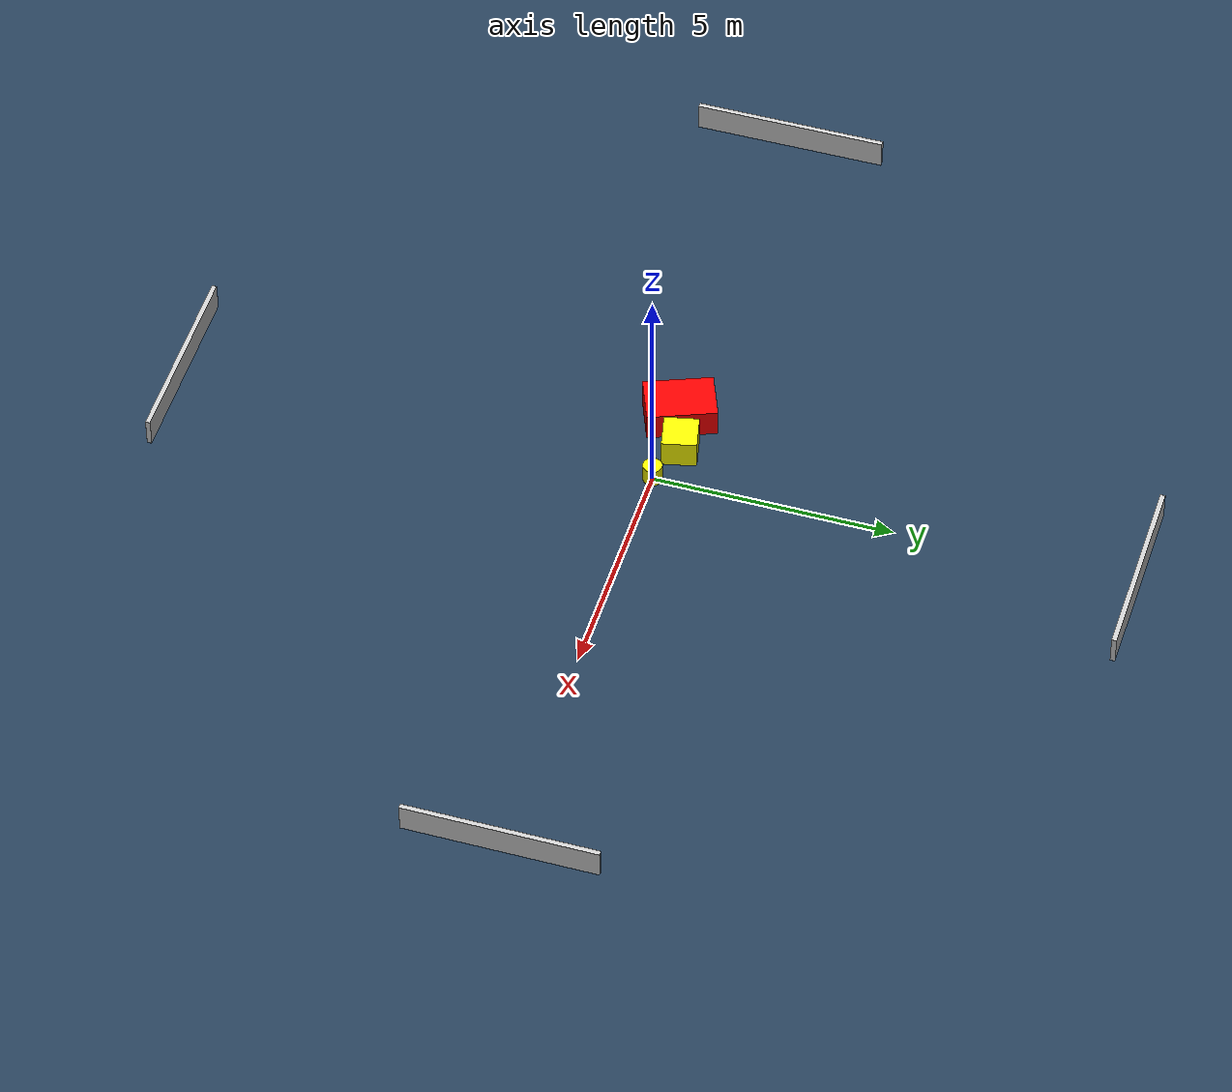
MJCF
<?xml version="1.0" ?>
<mujoco model="generated_environment">
  <option timestep="0.01" integrator="RK4" cone="elliptic"/>
  <default>
    <geom density="1"/>
  </default>
  <asset>
    <texture builtin="gradient" height="3072" name="skybox" rgb1="0.3 0.5 0.7" rgb2="0 0 0" type="skybox" width="512"/>
    <texture builtin="checker" height="300" name="groundplane" rgb1="0.2 0.3 0.4" rgb2="0.1 0.2 0.3" type="2d" width="300"/>
    <material name="groundplane" reflectance="0.2" texrepeat="5 5" texture="groundplane"/>
  </asset>
  <worldbody>
    <light dir="0 0 -1" directional="true" pos="0 0 1.5"/>
    <geom condim="3" friction="0.5 0.005 0.001" material="groundplane" name="floor" pos="0 0 0" size="0 0 0.05" type="plane"/>
    <body name="walls">
      <geom name="wall_1" condim="4" pos="-10.0 0.0 0.3" rgba="0.800000011920929 0.800000011920929 0.800000011920929 1.0" size="0.05 2.0 0.3" type="box"/>
      <geom name="wall_2" condim="4" pos="10.0 0.0 0.3" rgba="0.800000011920929 0.800000011920929 0.800000011920929 1.0" size="0.05 2.0 0.3" type="box"/>
      <geom name="wall_3" condim="4" pos="0.0 -10.0 0.3" rgba="0.800000011920929 0.800000011920929 0.800000011920929 1.0" size="2.0 0.05 0.3" type="box"/>
      <geom name="wall_4" condim="4" pos="0.0 10.0 0.3" rgba="0.800000011920929 0.800000011920929 0.800000011920929 1.0" size="2.0 0.05 0.3" type="box"/>
    </body>
    <body name="robot">
      <joint name="joint_x" type="slide" pos="0 0 0" axis="1 0 0"/>
      <joint name="joint_y" type="slide" pos="0 0 0" axis="0 1 0"/>
      <geom name="robot" type="cylinder" pos="0.0 0.0 0.2" size="0.2 0.2 0.0" mass="5.0" friction="1.0 0.005 0.0001" condim="4" rgba="1.0 1.0 0.0 1.0"/>
    </body>
    <body name="obstacle_1_movable">
      <geom name="obstacle_1_movable" condim="4" pos="-0.8723836585779365 0.31815506730506515 0.3" euler="0 0 102.33307719416004" friction="0.0 0.005 0.001" rgba="1.0 1.0 0.0 1.0" size="0.3603866679756612 0.3681249297421768 0.3" type="box" mass="0.1"/>
      <joint type="free"/>
    </body>
    <body name="obstacle_2_static">
      <geom name="obstacle_2_static" condim="4" pos="-1.7672586968337847 0.04415695908342435 0.3" euler="0 0 21.74742899847005" friction="0.0 0.005 0.001" rgba="1.0 0.0 0.0 1.0" size="0.4984526653253753 0.7224894577025411 0.3" type="box"/>
    </body>
  </worldbody>
  <actuator>
    <motor name="actuator_x" joint="joint_x" gear="1" ctrlrange="-1 1"/>
    <motor name="actuator_y" joint="joint_y" gear="1" ctrlrange="-1 1"/>
  </actuator>
</mujoco>
